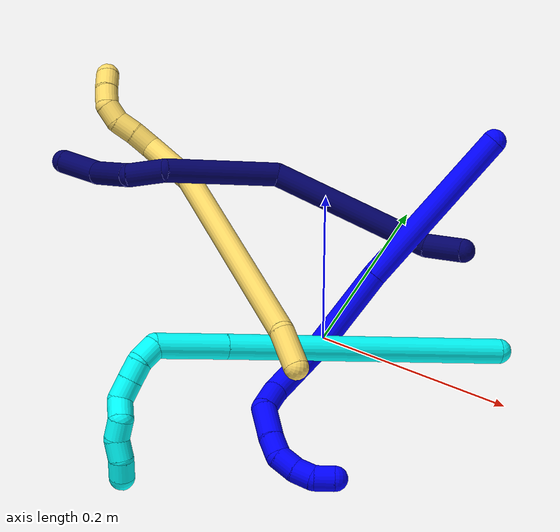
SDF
<sdf version="1.7">
 <world name="default">
  <model name="bin">
   <static>1</static>
   <link name="bottom">
    <collision name="collision-bottom">
     <pose>0 0 -0.01 0 -0 0</pose>
     <geometry><box><size>0.8 0.6 0.02</size></box></geometry>
     <surface>
      <friction><ode><mu>100</mu><mu2>100</mu2></ode></friction>
      <contact><collide_bitmask>65535</collide_bitmask></contact>
     </surface>
    </collision>
   </link>
   <link name="west_wall">
    <collision name="collision-west_wall">
     <pose>-0.41 0 0.1 0 -0 0</pose>
     <geometry><box><size>0.02 0.6 0.2</size></box></geometry>
     <surface>
      <friction><ode><mu>100</mu><mu2>100</mu2></ode></friction>
      <contact><collide_bitmask>65535</collide_bitmask></contact>
     </surface>
    </collision>
   </link>
   <link name="east_wall">
    <collision name="collision-east_wall">
     <pose>0.41 0 0.1 0 -0 0</pose>
     <geometry><box><size>0.02 0.6 0.2</size></box></geometry>
     <surface>
      <friction><ode><mu>100</mu><mu2>100</mu2></ode></friction>
      <contact><collide_bitmask>65535</collide_bitmask></contact>
     </surface>
    </collision>
   </link>
   <link name="south_wall">
    <collision name="collision-south_wall">
     <pose>0 -0.31 0.1 0 -0 0</pose>
     <geometry><box><size>0.8 0.02 0.2</size></box></geometry>
     <surface>
      <friction><ode><mu>100</mu><mu2>100</mu2></ode></friction>
      <contact><collide_bitmask>65535</collide_bitmask></contact>
     </surface>
    </collision>
   </link>
   <link name="north_wall">
    <collision name="collision-north_wall">
     <pose>0 0.31 0.1 0 -0 0</pose>
     <geometry><box><size>0.8 0.02 0.2</size></box></geometry>
     <surface>
      <friction><ode><mu>100</mu><mu2>100</mu2></ode></friction>
      <contact><collide_bitmask>65535</collide_bitmask></contact>
     </surface>
    </collision>
   </link>
  </model>
  <model name="1">
   <static>0</static>
   <link name="1">
    <collision name="collision-cylinder-e_1_1_4">
     <pose>-0.057769 -0.057531 0.038666 0.979057 -0.694777 -0.38113</pose>
     <geometry><cylinder><radius>0.0125</radius><length>0.180468</length></cylinder></geometry>
     <surface>
      <friction><ode><mu>1.16</mu><mu2>1.16</mu2><slip1>0</slip1><slip2>0</slip2></ode></friction>
      <contact><ode><kp>1e+06</kp><kd>1</kd><max_vel>0</max_vel><min_depth>0.001</min_depth></ode></contact>
     </surface>
    </collision>
    <visual name="visual-cylinder-e_1_1_4">
     <pose>-0.057769 -0.057531 0.038666 0.979057 -0.694777 -0.38113</pose>
     <geometry><cylinder><radius>0.0125</radius><length>0.180468</length></cylinder></geometry>
     <material><ambient>0 0 1 1</ambient></material>
    </visual>
    <collision name="collision-cylinder-e_2_4_5">
     <pose>-0.14326 -0.145166 0.093952 1.06631 -0.678493 -0.410656</pose>
     <geometry><cylinder><radius>0.0125</radius><length>0.088339</length></cylinder></geometry>
     <surface>
      <friction><ode><mu>1.16</mu><mu2>1.16</mu2><slip1>0</slip1><slip2>0</slip2></ode></friction>
      <contact><ode><kp>1e+06</kp><kd>1</kd><max_vel>0</max_vel><min_depth>0.001</min_depth></ode></contact>
     </surface>
    </collision>
    <visual name="visual-cylinder-e_2_4_5">
     <pose>-0.14326 -0.145166 0.093952 1.06631 -0.678493 -0.410656</pose>
     <geometry><cylinder><radius>0.0125</radius><length>0.088339</length></cylinder></geometry>
     <material><ambient>0 0 1 1</ambient></material>
    </visual>
    <collision name="collision-cylinder-e_3_5_6">
     <pose>-0.172323 -0.202817 0.141374 0.729722 -0.032449 -0.012395</pose>
     <geometry><cylinder><radius>0.0125</radius><length>0.08269</length></cylinder></geometry>
     <surface>
      <friction><ode><mu>1.16</mu><mu2>1.16</mu2><slip1>0</slip1><slip2>0</slip2></ode></friction>
      <contact><ode><kp>1e+06</kp><kd>1</kd><max_vel>0</max_vel><min_depth>0.001</min_depth></ode></contact>
     </surface>
    </collision>
    <visual name="visual-cylinder-e_3_5_6">
     <pose>-0.172323 -0.202817 0.141374 0.729722 -0.032449 -0.012395</pose>
     <geometry><cylinder><radius>0.0125</radius><length>0.08269</length></cylinder></geometry>
     <material><ambient>0 0 1 1</ambient></material>
    </visual>
    <collision name="collision-cylinder-e_4_6_7">
     <pose>-0.170884 -0.240504 0.182005 0.800805 0.194392 0.082493</pose>
     <geometry><cylinder><radius>0.0125</radius><length>0.028787</length></cylinder></geometry>
     <surface>
      <friction><ode><mu>1.16</mu><mu2>1.16</mu2><slip1>0</slip1><slip2>0</slip2></ode></friction>
      <contact><ode><kp>1e+06</kp><kd>1</kd><max_vel>0</max_vel><min_depth>0.001</min_depth></ode></contact>
     </surface>
    </collision>
    <visual name="visual-cylinder-e_4_6_7">
     <pose>-0.170884 -0.240504 0.182005 0.800805 0.194392 0.082493</pose>
     <geometry><cylinder><radius>0.0125</radius><length>0.028787</length></cylinder></geometry>
     <material><ambient>0 0 1 1</ambient></material>
    </visual>
    <collision name="collision-cylinder-e_5_7_8">
     <pose>-0.161872 -0.267507 0.193747 1.45795 0.351904 0.314933</pose>
     <geometry><cylinder><radius>0.0125</radius><length>0.036159</length></cylinder></geometry>
     <surface>
      <friction><ode><mu>1.16</mu><mu2>1.16</mu2><slip1>0</slip1><slip2>0</slip2></ode></friction>
      <contact><ode><kp>1e+06</kp><kd>1</kd><max_vel>0</max_vel><min_depth>0.001</min_depth></ode></contact>
     </surface>
    </collision>
    <visual name="visual-cylinder-e_5_7_8">
     <pose>-0.161872 -0.267507 0.193747 1.45795 0.351904 0.314933</pose>
     <geometry><cylinder><radius>0.0125</radius><length>0.036159</length></cylinder></geometry>
     <material><ambient>0 0 1 1</ambient></material>
    </visual>
    <collision name="collision-cylinder-e_6_8_9">
     <pose>-0.151729 -0.294349 0.195339 1.60273 0.373334 0.385159</pose>
     <geometry><cylinder><radius>0.0125</radius><length>0.021444</length></cylinder></geometry>
     <surface>
      <friction><ode><mu>1.16</mu><mu2>1.16</mu2><slip1>0</slip1><slip2>0</slip2></ode></friction>
      <contact><ode><kp>1e+06</kp><kd>1</kd><max_vel>0</max_vel><min_depth>0.001</min_depth></ode></contact>
     </surface>
    </collision>
    <visual name="visual-cylinder-e_6_8_9">
     <pose>-0.151729 -0.294349 0.195339 1.60273 0.373334 0.385159</pose>
     <geometry><cylinder><radius>0.0125</radius><length>0.021444</length></cylinder></geometry>
     <material><ambient>0 0 1 1</ambient></material>
    </visual>
    <collision name="collision-cylinder-e_7_9_10">
     <pose>-0.142425 -0.312033 0.189659 2.17862 0.521503 0.944298</pose>
     <geometry><cylinder><radius>0.0125</radius><length>0.021654</length></cylinder></geometry>
     <surface>
      <friction><ode><mu>1.16</mu><mu2>1.16</mu2><slip1>0</slip1><slip2>0</slip2></ode></friction>
      <contact><ode><kp>1e+06</kp><kd>1</kd><max_vel>0</max_vel><min_depth>0.001</min_depth></ode></contact>
     </surface>
    </collision>
    <visual name="visual-cylinder-e_7_9_10">
     <pose>-0.142425 -0.312033 0.189659 2.17862 0.521503 0.944298</pose>
     <geometry><cylinder><radius>0.0125</radius><length>0.021654</length></cylinder></geometry>
     <material><ambient>0 0 1 1</ambient></material>
    </visual>
    <collision name="collision-cylinder-e_8_10_11">
     <pose>-0.13016 -0.325022 0.179177 2.34068 0.751231 1.49991</pose>
     <geometry><cylinder><radius>0.0125</radius><length>0.020134</length></cylinder></geometry>
     <surface>
      <friction><ode><mu>1.16</mu><mu2>1.16</mu2><slip1>0</slip1><slip2>0</slip2></ode></friction>
      <contact><ode><kp>1e+06</kp><kd>1</kd><max_vel>0</max_vel><min_depth>0.001</min_depth></ode></contact>
     </surface>
    </collision>
    <visual name="visual-cylinder-e_8_10_11">
     <pose>-0.13016 -0.325022 0.179177 2.34068 0.751231 1.49991</pose>
     <geometry><cylinder><radius>0.0125</radius><length>0.020134</length></cylinder></geometry>
     <material><ambient>0 0 1 1</ambient></material>
    </visual>
    <collision name="collision-cylinder-e_9_11_2">
     <pose>-0.117065 -0.331511 0.166112 2.99093 0.659067 2.7072</pose>
     <geometry><cylinder><radius>0.0125</radius><length>0.020326</length></cylinder></geometry>
     <surface>
      <friction><ode><mu>1.16</mu><mu2>1.16</mu2><slip1>0</slip1><slip2>0</slip2></ode></friction>
      <contact><ode><kp>1e+06</kp><kd>1</kd><max_vel>0</max_vel><min_depth>0.001</min_depth></ode></contact>
     </surface>
    </collision>
    <visual name="visual-cylinder-e_9_11_2">
     <pose>-0.117065 -0.331511 0.166112 2.99093 0.659067 2.7072</pose>
     <geometry><cylinder><radius>0.0125</radius><length>0.020326</length></cylinder></geometry>
     <material><ambient>0 0 1 1</ambient></material>
    </visual>
    <collision name="collision-sphere-2">
     <pose>-0.110841 -0.332717 0.158169 0 -0 0</pose>
     <geometry><sphere><radius>0.0125</radius></sphere></geometry>
     <surface>
      <friction><ode><mu>1.16</mu><mu2>1.16</mu2><slip1>0</slip1><slip2>0</slip2></ode></friction>
      <contact><ode><kp>1e+06</kp><kd>1</kd><max_vel>0</max_vel><min_depth>0.001</min_depth></ode></contact>
     </surface>
    </collision>
    <visual name="visual-sphere-2">
     <pose>-0.110841 -0.332717 0.158169 0 -0 0</pose>
     <geometry><sphere><radius>0.0125</radius></sphere></geometry>
     <material><ambient>0 0 1 1</ambient></material>
    </visual>
    <collision name="collision-sphere-11">
     <pose>-0.123289 -0.330305 0.174056 0 -0 0</pose>
     <geometry><sphere><radius>0.0125</radius></sphere></geometry>
     <surface>
      <friction><ode><mu>1.16</mu><mu2>1.16</mu2><slip1>0</slip1><slip2>0</slip2></ode></friction>
      <contact><ode><kp>1e+06</kp><kd>1</kd><max_vel>0</max_vel><min_depth>0.001</min_depth></ode></contact>
     </surface>
    </collision>
    <visual name="visual-sphere-11">
     <pose>-0.123289 -0.330305 0.174056 0 -0 0</pose>
     <geometry><sphere><radius>0.0125</radius></sphere></geometry>
     <material><ambient>0 0 1 1</ambient></material>
    </visual>
    <collision name="collision-sphere-10">
     <pose>-0.137031 -0.31974 0.184298 0 -0 0</pose>
     <geometry><sphere><radius>0.0125</radius></sphere></geometry>
     <surface>
      <friction><ode><mu>1.16</mu><mu2>1.16</mu2><slip1>0</slip1><slip2>0</slip2></ode></friction>
      <contact><ode><kp>1e+06</kp><kd>1</kd><max_vel>0</max_vel><min_depth>0.001</min_depth></ode></contact>
     </surface>
    </collision>
    <visual name="visual-sphere-10">
     <pose>-0.137031 -0.31974 0.184298 0 -0 0</pose>
     <geometry><sphere><radius>0.0125</radius></sphere></geometry>
     <material><ambient>0 0 1 1</ambient></material>
    </visual>
    <collision name="collision-sphere-9">
     <pose>-0.147819 -0.304327 0.19502 0 -0 0</pose>
     <geometry><sphere><radius>0.0125</radius></sphere></geometry>
     <surface>
      <friction><ode><mu>1.16</mu><mu2>1.16</mu2><slip1>0</slip1><slip2>0</slip2></ode></friction>
      <contact><ode><kp>1e+06</kp><kd>1</kd><max_vel>0</max_vel><min_depth>0.001</min_depth></ode></contact>
     </surface>
    </collision>
    <visual name="visual-sphere-9">
     <pose>-0.147819 -0.304327 0.19502 0 -0 0</pose>
     <geometry><sphere><radius>0.0125</radius></sphere></geometry>
     <material><ambient>0 0 1 1</ambient></material>
    </visual>
    <collision name="collision-sphere-4">
     <pose>-0.115538 -0.115063 0.077331 0 -0 0</pose>
     <geometry><sphere><radius>0.0125</radius></sphere></geometry>
     <surface>
      <friction><ode><mu>1.16</mu><mu2>1.16</mu2><slip1>0</slip1><slip2>0</slip2></ode></friction>
      <contact><ode><kp>1e+06</kp><kd>1</kd><max_vel>0</max_vel><min_depth>0.001</min_depth></ode></contact>
     </surface>
    </collision>
    <visual name="visual-sphere-4">
     <pose>-0.115538 -0.115063 0.077331 0 -0 0</pose>
     <geometry><sphere><radius>0.0125</radius></sphere></geometry>
     <material><ambient>0 0 1 1</ambient></material>
    </visual>
    <collision name="collision-sphere-1">
     <geometry><sphere><radius>0.0125</radius></sphere></geometry>
     <surface>
      <friction><ode><mu>1.16</mu><mu2>1.16</mu2><slip1>0</slip1><slip2>0</slip2></ode></friction>
      <contact><ode><kp>1e+06</kp><kd>1</kd><max_vel>0</max_vel><min_depth>0.001</min_depth></ode></contact>
     </surface>
    </collision>
    <visual name="visual-sphere-1">
     <geometry><sphere><radius>0.0125</radius></sphere></geometry>
     <material><ambient>0 0 1 1</ambient></material>
    </visual>
    <collision name="collision-sphere-8">
     <pose>-0.15564 -0.28437 0.195658 0 -0 0</pose>
     <geometry><sphere><radius>0.0125</radius></sphere></geometry>
     <surface>
      <friction><ode><mu>1.16</mu><mu2>1.16</mu2><slip1>0</slip1><slip2>0</slip2></ode></friction>
      <contact><ode><kp>1e+06</kp><kd>1</kd><max_vel>0</max_vel><min_depth>0.001</min_depth></ode></contact>
     </surface>
    </collision>
    <visual name="visual-sphere-8">
     <pose>-0.15564 -0.28437 0.195658 0 -0 0</pose>
     <geometry><sphere><radius>0.0125</radius></sphere></geometry>
     <material><ambient>0 0 1 1</ambient></material>
    </visual>
    <collision name="collision-sphere-5">
     <pose>-0.170981 -0.175269 0.110573 0 -0 0</pose>
     <geometry><sphere><radius>0.0125</radius></sphere></geometry>
     <surface>
      <friction><ode><mu>1.16</mu><mu2>1.16</mu2><slip1>0</slip1><slip2>0</slip2></ode></friction>
      <contact><ode><kp>1e+06</kp><kd>1</kd><max_vel>0</max_vel><min_depth>0.001</min_depth></ode></contact>
     </surface>
    </collision>
    <visual name="visual-sphere-5">
     <pose>-0.170981 -0.175269 0.110573 0 -0 0</pose>
     <geometry><sphere><radius>0.0125</radius></sphere></geometry>
     <material><ambient>0 0 1 1</ambient></material>
    </visual>
    <collision name="collision-sphere-6">
     <pose>-0.173664 -0.230366 0.172174 0 -0 0</pose>
     <geometry><sphere><radius>0.0125</radius></sphere></geometry>
     <surface>
      <friction><ode><mu>1.16</mu><mu2>1.16</mu2><slip1>0</slip1><slip2>0</slip2></ode></friction>
      <contact><ode><kp>1e+06</kp><kd>1</kd><max_vel>0</max_vel><min_depth>0.001</min_depth></ode></contact>
     </surface>
    </collision>
    <visual name="visual-sphere-6">
     <pose>-0.173664 -0.230366 0.172174 0 -0 0</pose>
     <geometry><sphere><radius>0.0125</radius></sphere></geometry>
     <material><ambient>0 0 1 1</ambient></material>
    </visual>
    <collision name="collision-sphere-7">
     <pose>-0.168103 -0.250643 0.191836 0 -0 0</pose>
     <geometry><sphere><radius>0.0125</radius></sphere></geometry>
     <surface>
      <friction><ode><mu>1.16</mu><mu2>1.16</mu2><slip1>0</slip1><slip2>0</slip2></ode></friction>
      <contact><ode><kp>1e+06</kp><kd>1</kd><max_vel>0</max_vel><min_depth>0.001</min_depth></ode></contact>
     </surface>
    </collision>
    <visual name="visual-sphere-7">
     <pose>-0.168103 -0.250643 0.191836 0 -0 0</pose>
     <geometry><sphere><radius>0.0125</radius></sphere></geometry>
     <material><ambient>0 0 1 1</ambient></material>
    </visual>
    <inertial>
     <pose>-0.118881 -0.165849 0.108985 0 -0 0</pose>
     <mass>0.5</mass>
     <inertia>
      <ixx>0.000292</ixx>
      <ixy>0</ixy>
      <ixz>0</ixz>
      <iyy>0.000257</iyy>
      <iyz>0</iyz>
      <izz>0.000767</izz>
     </inertia>
    </inertial>
   </link>
   <pose>0.096102 0.18786 0.157817 0.700076 -0.84079 0.014158</pose>
  </model>
  <model name="3">
   <static>0</static>
   <link name="3">
    <collision name="collision-cylinder-e_1_1_4">
     <pose>-0.042125 -0.047841 0.127437 0.359126 -0.300119 -0.054876</pose>
     <geometry><cylinder><radius>0.0125</radius><length>0.284981</length></cylinder></geometry>
     <surface>
      <friction><ode><mu>1.16</mu><mu2>1.16</mu2><slip1>0</slip1><slip2>0</slip2></ode></friction>
      <contact><ode><kp>1e+06</kp><kd>1</kd><max_vel>0</max_vel><min_depth>0.001</min_depth></ode></contact>
     </surface>
    </collision>
    <visual name="visual-cylinder-e_1_1_4">
     <pose>-0.042125 -0.047841 0.127437 0.359126 -0.300119 -0.054876</pose>
     <geometry><cylinder><radius>0.0125</radius><length>0.284981</length></cylinder></geometry>
     <material><ambient>0.003922 1 0.996078 1</ambient></material>
    </visual>
    <collision name="collision-cylinder-e_2_4_5">
     <pose>-0.09476 -0.107532 0.286902 0.354392 -0.298581 -0.053856</pose>
     <geometry><cylinder><radius>0.0125</radius><length>0.071461</length></cylinder></geometry>
     <surface>
      <friction><ode><mu>1.16</mu><mu2>1.16</mu2><slip1>0</slip1><slip2>0</slip2></ode></friction>
      <contact><ode><kp>1e+06</kp><kd>1</kd><max_vel>0</max_vel><min_depth>0.001</min_depth></ode></contact>
     </surface>
    </collision>
    <visual name="visual-cylinder-e_2_4_5">
     <pose>-0.09476 -0.107532 0.286902 0.354392 -0.298581 -0.053856</pose>
     <geometry><cylinder><radius>0.0125</radius><length>0.071461</length></cylinder></geometry>
     <material><ambient>0.003922 1 0.996078 1</ambient></material>
    </visual>
    <collision name="collision-cylinder-e_3_5_6">
     <pose>-0.104336 -0.115747 0.329361 -0.3353 0.084405 -0.014293</pose>
     <geometry><cylinder><radius>0.0125</radius><length>0.022173</length></cylinder></geometry>
     <surface>
      <friction><ode><mu>1.16</mu><mu2>1.16</mu2><slip1>0</slip1><slip2>0</slip2></ode></friction>
      <contact><ode><kp>1e+06</kp><kd>1</kd><max_vel>0</max_vel><min_depth>0.001</min_depth></ode></contact>
     </surface>
    </collision>
    <visual name="visual-cylinder-e_3_5_6">
     <pose>-0.104336 -0.115747 0.329361 -0.3353 0.084405 -0.014293</pose>
     <geometry><cylinder><radius>0.0125</radius><length>0.022173</length></cylinder></geometry>
     <material><ambient>0.003922 1 0.996078 1</ambient></material>
    </visual>
    <collision name="collision-cylinder-e_4_6_7">
     <pose>-0.098685 -0.10818 0.347731 -0.459896 0.489286 -0.116744</pose>
     <geometry><cylinder><radius>0.0125</radius><length>0.020073</length></cylinder></geometry>
     <surface>
      <friction><ode><mu>1.16</mu><mu2>1.16</mu2><slip1>0</slip1><slip2>0</slip2></ode></friction>
      <contact><ode><kp>1e+06</kp><kd>1</kd><max_vel>0</max_vel><min_depth>0.001</min_depth></ode></contact>
     </surface>
    </collision>
    <visual name="visual-cylinder-e_4_6_7">
     <pose>-0.098685 -0.10818 0.347731 -0.459896 0.489286 -0.116744</pose>
     <geometry><cylinder><radius>0.0125</radius><length>0.020073</length></cylinder></geometry>
     <material><ambient>0.003922 1 0.996078 1</ambient></material>
    </visual>
    <collision name="collision-cylinder-e_5_7_8">
     <pose>-0.089188 -0.09972 0.363981 -0.498835 0.467659 -0.121194</pose>
     <geometry><cylinder><radius>0.0125</radius><length>0.021206</length></cylinder></geometry>
     <surface>
      <friction><ode><mu>1.16</mu><mu2>1.16</mu2><slip1>0</slip1><slip2>0</slip2></ode></friction>
      <contact><ode><kp>1e+06</kp><kd>1</kd><max_vel>0</max_vel><min_depth>0.001</min_depth></ode></contact>
     </surface>
    </collision>
    <visual name="visual-cylinder-e_5_7_8">
     <pose>-0.089188 -0.09972 0.363981 -0.498835 0.467659 -0.121194</pose>
     <geometry><cylinder><radius>0.0125</radius><length>0.021206</length></cylinder></geometry>
     <material><ambient>0.003922 1 0.996078 1</ambient></material>
    </visual>
    <collision name="collision-cylinder-e_6_8_9">
     <pose>-0.082584 -0.086379 0.376704 -1.10667 0.182931 -0.113192</pose>
     <geometry><cylinder><radius>0.0125</radius><length>0.020047</length></cylinder></geometry>
     <surface>
      <friction><ode><mu>1.16</mu><mu2>1.16</mu2><slip1>0</slip1><slip2>0</slip2></ode></friction>
      <contact><ode><kp>1e+06</kp><kd>1</kd><max_vel>0</max_vel><min_depth>0.001</min_depth></ode></contact>
     </surface>
    </collision>
    <visual name="visual-cylinder-e_6_8_9">
     <pose>-0.082584 -0.086379 0.376704 -1.10667 0.182931 -0.113192</pose>
     <geometry><cylinder><radius>0.0125</radius><length>0.020047</length></cylinder></geometry>
     <material><ambient>0.003922 1 0.996078 1</ambient></material>
    </visual>
    <collision name="collision-cylinder-e_7_9_10">
     <pose>-0.07327 -0.073566 0.386408 -0.647182 0.8461 -0.299735</pose>
     <geometry><cylinder><radius>0.0125</radius><length>0.020011</length></cylinder></geometry>
     <surface>
      <friction><ode><mu>1.16</mu><mu2>1.16</mu2><slip1>0</slip1><slip2>0</slip2></ode></friction>
      <contact><ode><kp>1e+06</kp><kd>1</kd><max_vel>0</max_vel><min_depth>0.001</min_depth></ode></contact>
     </surface>
    </collision>
    <visual name="visual-cylinder-e_7_9_10">
     <pose>-0.07327 -0.073566 0.386408 -0.647182 0.8461 -0.299735</pose>
     <geometry><cylinder><radius>0.0125</radius><length>0.020011</length></cylinder></geometry>
     <material><ambient>0.003922 1 0.996078 1</ambient></material>
    </visual>
    <collision name="collision-cylinder-e_8_10_11">
     <pose>-0.058469 -0.062979 0.393566 -1.29477 0.818037 -0.633411</pose>
     <geometry><cylinder><radius>0.0125</radius><length>0.020031</length></cylinder></geometry>
     <surface>
      <friction><ode><mu>1.16</mu><mu2>1.16</mu2><slip1>0</slip1><slip2>0</slip2></ode></friction>
      <contact><ode><kp>1e+06</kp><kd>1</kd><max_vel>0</max_vel><min_depth>0.001</min_depth></ode></contact>
     </surface>
    </collision>
    <visual name="visual-cylinder-e_8_10_11">
     <pose>-0.058469 -0.062979 0.393566 -1.29477 0.818037 -0.633411</pose>
     <geometry><cylinder><radius>0.0125</radius><length>0.020031</length></cylinder></geometry>
     <material><ambient>0.003922 1 0.996078 1</ambient></material>
    </visual>
    <collision name="collision-cylinder-e_9_11_2">
     <pose>-0.042281 -0.05253 0.397969 -0.98932 1.09101 -0.632754</pose>
     <geometry><cylinder><radius>0.0125</radius><length>0.020017</length></cylinder></geometry>
     <surface>
      <friction><ode><mu>1.16</mu><mu2>1.16</mu2><slip1>0</slip1><slip2>0</slip2></ode></friction>
      <contact><ode><kp>1e+06</kp><kd>1</kd><max_vel>0</max_vel><min_depth>0.001</min_depth></ode></contact>
     </surface>
    </collision>
    <visual name="visual-cylinder-e_9_11_2">
     <pose>-0.042281 -0.05253 0.397969 -0.98932 1.09101 -0.632754</pose>
     <geometry><cylinder><radius>0.0125</radius><length>0.020017</length></cylinder></geometry>
     <material><ambient>0.003922 1 0.996078 1</ambient></material>
    </visual>
    <collision name="collision-sphere-2">
     <pose>-0.033403 -0.04867 0.400507 0 -0 0</pose>
     <geometry><sphere><radius>0.0125</radius></sphere></geometry>
     <surface>
      <friction><ode><mu>1.16</mu><mu2>1.16</mu2><slip1>0</slip1><slip2>0</slip2></ode></friction>
      <contact><ode><kp>1e+06</kp><kd>1</kd><max_vel>0</max_vel><min_depth>0.001</min_depth></ode></contact>
     </surface>
    </collision>
    <visual name="visual-sphere-2">
     <pose>-0.033403 -0.04867 0.400507 0 -0 0</pose>
     <geometry><sphere><radius>0.0125</radius></sphere></geometry>
     <material><ambient>0.003922 1 0.996078 1</ambient></material>
    </visual>
    <collision name="collision-sphere-11">
     <pose>-0.05116 -0.056391 0.395432 0 -0 0</pose>
     <geometry><sphere><radius>0.0125</radius></sphere></geometry>
     <surface>
      <friction><ode><mu>1.16</mu><mu2>1.16</mu2><slip1>0</slip1><slip2>0</slip2></ode></friction>
      <contact><ode><kp>1e+06</kp><kd>1</kd><max_vel>0</max_vel><min_depth>0.001</min_depth></ode></contact>
     </surface>
    </collision>
    <visual name="visual-sphere-11">
     <pose>-0.05116 -0.056391 0.395432 0 -0 0</pose>
     <geometry><sphere><radius>0.0125</radius></sphere></geometry>
     <material><ambient>0.003922 1 0.996078 1</ambient></material>
    </visual>
    <collision name="collision-sphere-10">
     <pose>-0.065779 -0.069567 0.3917 0 -0 0</pose>
     <geometry><sphere><radius>0.0125</radius></sphere></geometry>
     <surface>
      <friction><ode><mu>1.16</mu><mu2>1.16</mu2><slip1>0</slip1><slip2>0</slip2></ode></friction>
      <contact><ode><kp>1e+06</kp><kd>1</kd><max_vel>0</max_vel><min_depth>0.001</min_depth></ode></contact>
     </surface>
    </collision>
    <visual name="visual-sphere-10">
     <pose>-0.065779 -0.069567 0.3917 0 -0 0</pose>
     <geometry><sphere><radius>0.0125</radius></sphere></geometry>
     <material><ambient>0.003922 1 0.996078 1</ambient></material>
    </visual>
    <collision name="collision-sphere-9">
     <pose>-0.080761 -0.077565 0.381116 0 -0 0</pose>
     <geometry><sphere><radius>0.0125</radius></sphere></geometry>
     <surface>
      <friction><ode><mu>1.16</mu><mu2>1.16</mu2><slip1>0</slip1><slip2>0</slip2></ode></friction>
      <contact><ode><kp>1e+06</kp><kd>1</kd><max_vel>0</max_vel><min_depth>0.001</min_depth></ode></contact>
     </surface>
    </collision>
    <visual name="visual-sphere-9">
     <pose>-0.080761 -0.077565 0.381116 0 -0 0</pose>
     <geometry><sphere><radius>0.0125</radius></sphere></geometry>
     <material><ambient>0.003922 1 0.996078 1</ambient></material>
    </visual>
    <collision name="collision-sphere-4">
     <pose>-0.08425 -0.095681 0.254875 0 -0 0</pose>
     <geometry><sphere><radius>0.0125</radius></sphere></geometry>
     <surface>
      <friction><ode><mu>1.16</mu><mu2>1.16</mu2><slip1>0</slip1><slip2>0</slip2></ode></friction>
      <contact><ode><kp>1e+06</kp><kd>1</kd><max_vel>0</max_vel><min_depth>0.001</min_depth></ode></contact>
     </surface>
    </collision>
    <visual name="visual-sphere-4">
     <pose>-0.08425 -0.095681 0.254875 0 -0 0</pose>
     <geometry><sphere><radius>0.0125</radius></sphere></geometry>
     <material><ambient>0.003922 1 0.996078 1</ambient></material>
    </visual>
    <collision name="collision-sphere-1">
     <geometry><sphere><radius>0.0125</radius></sphere></geometry>
     <surface>
      <friction><ode><mu>1.16</mu><mu2>1.16</mu2><slip1>0</slip1><slip2>0</slip2></ode></friction>
      <contact><ode><kp>1e+06</kp><kd>1</kd><max_vel>0</max_vel><min_depth>0.001</min_depth></ode></contact>
     </surface>
    </collision>
    <visual name="visual-sphere-1">
     <geometry><sphere><radius>0.0125</radius></sphere></geometry>
     <material><ambient>0.003922 1 0.996078 1</ambient></material>
    </visual>
    <collision name="collision-sphere-8">
     <pose>-0.084408 -0.095192 0.372292 0 -0 0</pose>
     <geometry><sphere><radius>0.0125</radius></sphere></geometry>
     <surface>
      <friction><ode><mu>1.16</mu><mu2>1.16</mu2><slip1>0</slip1><slip2>0</slip2></ode></friction>
      <contact><ode><kp>1e+06</kp><kd>1</kd><max_vel>0</max_vel><min_depth>0.001</min_depth></ode></contact>
     </surface>
    </collision>
    <visual name="visual-sphere-8">
     <pose>-0.084408 -0.095192 0.372292 0 -0 0</pose>
     <geometry><sphere><radius>0.0125</radius></sphere></geometry>
     <material><ambient>0.003922 1 0.996078 1</ambient></material>
    </visual>
    <collision name="collision-sphere-5">
     <pose>-0.105271 -0.119382 0.318929 0 -0 0</pose>
     <geometry><sphere><radius>0.0125</radius></sphere></geometry>
     <surface>
      <friction><ode><mu>1.16</mu><mu2>1.16</mu2><slip1>0</slip1><slip2>0</slip2></ode></friction>
      <contact><ode><kp>1e+06</kp><kd>1</kd><max_vel>0</max_vel><min_depth>0.001</min_depth></ode></contact>
     </surface>
    </collision>
    <visual name="visual-sphere-5">
     <pose>-0.105271 -0.119382 0.318929 0 -0 0</pose>
     <geometry><sphere><radius>0.0125</radius></sphere></geometry>
     <material><ambient>0.003922 1 0.996078 1</ambient></material>
    </visual>
    <collision name="collision-sphere-6">
     <pose>-0.103402 -0.112112 0.339793 0 -0 0</pose>
     <geometry><sphere><radius>0.0125</radius></sphere></geometry>
     <surface>
      <friction><ode><mu>1.16</mu><mu2>1.16</mu2><slip1>0</slip1><slip2>0</slip2></ode></friction>
      <contact><ode><kp>1e+06</kp><kd>1</kd><max_vel>0</max_vel><min_depth>0.001</min_depth></ode></contact>
     </surface>
    </collision>
    <visual name="visual-sphere-6">
     <pose>-0.103402 -0.112112 0.339793 0 -0 0</pose>
     <geometry><sphere><radius>0.0125</radius></sphere></geometry>
     <material><ambient>0.003922 1 0.996078 1</ambient></material>
    </visual>
    <collision name="collision-sphere-7">
     <pose>-0.093967 -0.104248 0.35567 0 -0 0</pose>
     <geometry><sphere><radius>0.0125</radius></sphere></geometry>
     <surface>
      <friction><ode><mu>1.16</mu><mu2>1.16</mu2><slip1>0</slip1><slip2>0</slip2></ode></friction>
      <contact><ode><kp>1e+06</kp><kd>1</kd><max_vel>0</max_vel><min_depth>0.001</min_depth></ode></contact>
     </surface>
    </collision>
    <visual name="visual-sphere-7">
     <pose>-0.093967 -0.104248 0.35567 0 -0 0</pose>
     <geometry><sphere><radius>0.0125</radius></sphere></geometry>
     <material><ambient>0.003922 1 0.996078 1</ambient></material>
    </visual>
    <inertial>
     <pose>-0.060203 -0.067375 0.21991 0 -0 0</pose>
     <mass>0.5</mass>
     <inertia>
      <ixx>0.001782</ixx>
      <ixy>0</ixy>
      <ixz>0</ixz>
      <iyy>0.001755</iyy>
      <iyz>0</iyz>
      <izz>0.001266</izz>
     </inertia>
    </inertial>
   </link>
   <pose>0.169874 0.05431 0.012186 -2.46184 1.45348 1.68573</pose>
  </model>
  <model name="5">
   <static>0</static>
   <link name="5">
    <collision name="collision-cylinder-e_1_1_4">
     <pose>-0.016897 0.010982 -0.00319 -1.85348 -0.9758 1.23052</pose>
     <geometry><cylinder><radius>0.0125</radius><length>0.040806</length></cylinder></geometry>
     <surface>
      <friction><ode><mu>1.16</mu><mu2>1.16</mu2><slip1>0</slip1><slip2>0</slip2></ode></friction>
      <contact><ode><kp>1e+06</kp><kd>1</kd><max_vel>0</max_vel><min_depth>0.001</min_depth></ode></contact>
     </surface>
    </collision>
    <visual name="visual-cylinder-e_1_1_4">
     <pose>-0.016897 0.010982 -0.00319 -1.85348 -0.9758 1.23052</pose>
     <geometry><cylinder><radius>0.0125</radius><length>0.040806</length></cylinder></geometry>
     <material><ambient>1 0.858824 0.4 1</ambient></material>
    </visual>
    <collision name="collision-cylinder-e_2_4_5">
     <pose>-0.115514 0.138221 0.001767 -1.50083 -0.611539 0.572478</pose>
     <geometry><cylinder><radius>0.0125</radius><length>0.284677</length></cylinder></geometry>
     <surface>
      <friction><ode><mu>1.16</mu><mu2>1.16</mu2><slip1>0</slip1><slip2>0</slip2></ode></friction>
      <contact><ode><kp>1e+06</kp><kd>1</kd><max_vel>0</max_vel><min_depth>0.001</min_depth></ode></contact>
     </surface>
    </collision>
    <visual name="visual-cylinder-e_2_4_5">
     <pose>-0.115514 0.138221 0.001767 -1.50083 -0.611539 0.572478</pose>
     <geometry><cylinder><radius>0.0125</radius><length>0.284677</length></cylinder></geometry>
     <material><ambient>1 0.858824 0.4 1</ambient></material>
    </visual>
    <collision name="collision-cylinder-e_3_5_6">
     <pose>-0.214773 0.281583 0.000223 -1.9142 -0.547211 0.758244</pose>
     <geometry><cylinder><radius>0.0125</radius><length>0.067417</length></cylinder></geometry>
     <surface>
      <friction><ode><mu>1.16</mu><mu2>1.16</mu2><slip1>0</slip1><slip2>0</slip2></ode></friction>
      <contact><ode><kp>1e+06</kp><kd>1</kd><max_vel>0</max_vel><min_depth>0.001</min_depth></ode></contact>
     </surface>
    </collision>
    <visual name="visual-cylinder-e_3_5_6">
     <pose>-0.214773 0.281583 0.000223 -1.9142 -0.547211 0.758244</pose>
     <geometry><cylinder><radius>0.0125</radius><length>0.067417</length></cylinder></geometry>
     <material><ambient>1 0.858824 0.4 1</ambient></material>
    </visual>
    <collision name="collision-cylinder-e_4_6_7">
     <pose>-0.238796 0.313171 -0.018437 -2.67807 -0.574138 1.79284</pose>
     <geometry><cylinder><radius>0.0125</radius><length>0.02388</length></cylinder></geometry>
     <surface>
      <friction><ode><mu>1.16</mu><mu2>1.16</mu2><slip1>0</slip1><slip2>0</slip2></ode></friction>
      <contact><ode><kp>1e+06</kp><kd>1</kd><max_vel>0</max_vel><min_depth>0.001</min_depth></ode></contact>
     </surface>
    </collision>
    <visual name="visual-cylinder-e_4_6_7">
     <pose>-0.238796 0.313171 -0.018437 -2.67807 -0.574138 1.79284</pose>
     <geometry><cylinder><radius>0.0125</radius><length>0.02388</length></cylinder></geometry>
     <material><ambient>1 0.858824 0.4 1</ambient></material>
    </visual>
    <collision name="collision-cylinder-e_5_7_8">
     <pose>-0.250471 0.322688 -0.035731 -2.59773 -0.489989 1.46191</pose>
     <geometry><cylinder><radius>0.0125</radius><length>0.022054</length></cylinder></geometry>
     <surface>
      <friction><ode><mu>1.16</mu><mu2>1.16</mu2><slip1>0</slip1><slip2>0</slip2></ode></friction>
      <contact><ode><kp>1e+06</kp><kd>1</kd><max_vel>0</max_vel><min_depth>0.001</min_depth></ode></contact>
     </surface>
    </collision>
    <visual name="visual-cylinder-e_5_7_8">
     <pose>-0.250471 0.322688 -0.035731 -2.59773 -0.489989 1.46191</pose>
     <geometry><cylinder><radius>0.0125</radius><length>0.022054</length></cylinder></geometry>
     <material><ambient>1 0.858824 0.4 1</ambient></material>
    </visual>
    <collision name="collision-cylinder-e_6_8_9">
     <pose>-0.263493 0.33152 -0.04942 -2.52547 -0.87276 1.94413</pose>
     <geometry><cylinder><radius>0.0125</radius><length>0.020449</length></cylinder></geometry>
     <surface>
      <friction><ode><mu>1.16</mu><mu2>1.16</mu2><slip1>0</slip1><slip2>0</slip2></ode></friction>
      <contact><ode><kp>1e+06</kp><kd>1</kd><max_vel>0</max_vel><min_depth>0.001</min_depth></ode></contact>
     </surface>
    </collision>
    <visual name="visual-cylinder-e_6_8_9">
     <pose>-0.263493 0.33152 -0.04942 -2.52547 -0.87276 1.94413</pose>
     <geometry><cylinder><radius>0.0125</radius><length>0.020449</length></cylinder></geometry>
     <material><ambient>1 0.858824 0.4 1</ambient></material>
    </visual>
    <collision name="collision-cylinder-e_7_9_10">
     <pose>-0.280676 0.339628 -0.054062 -1.40501 -1.13352 0.988361</pose>
     <geometry><cylinder><radius>0.0125</radius><length>0.020641</length></cylinder></geometry>
     <surface>
      <friction><ode><mu>1.16</mu><mu2>1.16</mu2><slip1>0</slip1><slip2>0</slip2></ode></friction>
      <contact><ode><kp>1e+06</kp><kd>1</kd><max_vel>0</max_vel><min_depth>0.001</min_depth></ode></contact>
     </surface>
    </collision>
    <visual name="visual-cylinder-e_7_9_10">
     <pose>-0.280676 0.339628 -0.054062 -1.40501 -1.13352 0.988361</pose>
     <geometry><cylinder><radius>0.0125</radius><length>0.020641</length></cylinder></geometry>
     <material><ambient>1 0.858824 0.4 1</ambient></material>
    </visual>
    <collision name="collision-cylinder-e_8_10_2">
     <pose>-0.298768 0.348383 -0.051202 -1.12234 -1.0571 0.703609</pose>
     <geometry><cylinder><radius>0.0125</radius><length>0.020076</length></cylinder></geometry>
     <surface>
      <friction><ode><mu>1.16</mu><mu2>1.16</mu2><slip1>0</slip1><slip2>0</slip2></ode></friction>
      <contact><ode><kp>1e+06</kp><kd>1</kd><max_vel>0</max_vel><min_depth>0.001</min_depth></ode></contact>
     </surface>
    </collision>
    <visual name="visual-cylinder-e_8_10_2">
     <pose>-0.298768 0.348383 -0.051202 -1.12234 -1.0571 0.703609</pose>
     <geometry><cylinder><radius>0.0125</radius><length>0.020076</length></cylinder></geometry>
     <material><ambient>1 0.858824 0.4 1</ambient></material>
    </visual>
    <collision name="collision-sphere-2">
     <pose>-0.307511 0.352828 -0.049063 0 -0 0</pose>
     <geometry><sphere><radius>0.0125</radius></sphere></geometry>
     <surface>
      <friction><ode><mu>1.16</mu><mu2>1.16</mu2><slip1>0</slip1><slip2>0</slip2></ode></friction>
      <contact><ode><kp>1e+06</kp><kd>1</kd><max_vel>0</max_vel><min_depth>0.001</min_depth></ode></contact>
     </surface>
    </collision>
    <visual name="visual-sphere-2">
     <pose>-0.307511 0.352828 -0.049063 0 -0 0</pose>
     <geometry><sphere><radius>0.0125</radius></sphere></geometry>
     <material><ambient>1 0.858824 0.4 1</ambient></material>
    </visual>
    <collision name="collision-sphere-10">
     <pose>-0.290026 0.343938 -0.053341 0 -0 0</pose>
     <geometry><sphere><radius>0.0125</radius></sphere></geometry>
     <surface>
      <friction><ode><mu>1.16</mu><mu2>1.16</mu2><slip1>0</slip1><slip2>0</slip2></ode></friction>
      <contact><ode><kp>1e+06</kp><kd>1</kd><max_vel>0</max_vel><min_depth>0.001</min_depth></ode></contact>
     </surface>
    </collision>
    <visual name="visual-sphere-10">
     <pose>-0.290026 0.343938 -0.053341 0 -0 0</pose>
     <geometry><sphere><radius>0.0125</radius></sphere></geometry>
     <material><ambient>1 0.858824 0.4 1</ambient></material>
    </visual>
    <collision name="collision-sphere-9">
     <pose>-0.271327 0.335317 -0.054783 0 -0 0</pose>
     <geometry><sphere><radius>0.0125</radius></sphere></geometry>
     <surface>
      <friction><ode><mu>1.16</mu><mu2>1.16</mu2><slip1>0</slip1><slip2>0</slip2></ode></friction>
      <contact><ode><kp>1e+06</kp><kd>1</kd><max_vel>0</max_vel><min_depth>0.001</min_depth></ode></contact>
     </surface>
    </collision>
    <visual name="visual-sphere-9">
     <pose>-0.271327 0.335317 -0.054783 0 -0 0</pose>
     <geometry><sphere><radius>0.0125</radius></sphere></geometry>
     <material><ambient>1 0.858824 0.4 1</ambient></material>
    </visual>
    <collision name="collision-sphere-4">
     <pose>-0.033793 0.021964 -0.00638 0 -0 0</pose>
     <geometry><sphere><radius>0.0125</radius></sphere></geometry>
     <surface>
      <friction><ode><mu>1.16</mu><mu2>1.16</mu2><slip1>0</slip1><slip2>0</slip2></ode></friction>
      <contact><ode><kp>1e+06</kp><kd>1</kd><max_vel>0</max_vel><min_depth>0.001</min_depth></ode></contact>
     </surface>
    </collision>
    <visual name="visual-sphere-4">
     <pose>-0.033793 0.021964 -0.00638 0 -0 0</pose>
     <geometry><sphere><radius>0.0125</radius></sphere></geometry>
     <material><ambient>1 0.858824 0.4 1</ambient></material>
    </visual>
    <collision name="collision-sphere-1">
     <geometry><sphere><radius>0.0125</radius></sphere></geometry>
     <surface>
      <friction><ode><mu>1.16</mu><mu2>1.16</mu2><slip1>0</slip1><slip2>0</slip2></ode></friction>
      <contact><ode><kp>1e+06</kp><kd>1</kd><max_vel>0</max_vel><min_depth>0.001</min_depth></ode></contact>
     </surface>
    </collision>
    <visual name="visual-sphere-1">
     <geometry><sphere><radius>0.0125</radius></sphere></geometry>
     <material><ambient>1 0.858824 0.4 1</ambient></material>
    </visual>
    <collision name="collision-sphere-8">
     <pose>-0.25566 0.327722 -0.044057 0 -0 0</pose>
     <geometry><sphere><radius>0.0125</radius></sphere></geometry>
     <surface>
      <friction><ode><mu>1.16</mu><mu2>1.16</mu2><slip1>0</slip1><slip2>0</slip2></ode></friction>
      <contact><ode><kp>1e+06</kp><kd>1</kd><max_vel>0</max_vel><min_depth>0.001</min_depth></ode></contact>
     </surface>
    </collision>
    <visual name="visual-sphere-8">
     <pose>-0.25566 0.327722 -0.044057 0 -0 0</pose>
     <geometry><sphere><radius>0.0125</radius></sphere></geometry>
     <material><ambient>1 0.858824 0.4 1</ambient></material>
    </visual>
    <collision name="collision-sphere-5">
     <pose>-0.197234 0.254477 0.009915 0 -0 0</pose>
     <geometry><sphere><radius>0.0125</radius></sphere></geometry>
     <surface>
      <friction><ode><mu>1.16</mu><mu2>1.16</mu2><slip1>0</slip1><slip2>0</slip2></ode></friction>
      <contact><ode><kp>1e+06</kp><kd>1</kd><max_vel>0</max_vel><min_depth>0.001</min_depth></ode></contact>
     </surface>
    </collision>
    <visual name="visual-sphere-5">
     <pose>-0.197234 0.254477 0.009915 0 -0 0</pose>
     <geometry><sphere><radius>0.0125</radius></sphere></geometry>
     <material><ambient>1 0.858824 0.4 1</ambient></material>
    </visual>
    <collision name="collision-sphere-6">
     <pose>-0.232312 0.308688 -0.00947 0 -0 0</pose>
     <geometry><sphere><radius>0.0125</radius></sphere></geometry>
     <surface>
      <friction><ode><mu>1.16</mu><mu2>1.16</mu2><slip1>0</slip1><slip2>0</slip2></ode></friction>
      <contact><ode><kp>1e+06</kp><kd>1</kd><max_vel>0</max_vel><min_depth>0.001</min_depth></ode></contact>
     </surface>
    </collision>
    <visual name="visual-sphere-6">
     <pose>-0.232312 0.308688 -0.00947 0 -0 0</pose>
     <geometry><sphere><radius>0.0125</radius></sphere></geometry>
     <material><ambient>1 0.858824 0.4 1</ambient></material>
    </visual>
    <collision name="collision-sphere-7">
     <pose>-0.245281 0.317653 -0.027405 0 -0 0</pose>
     <geometry><sphere><radius>0.0125</radius></sphere></geometry>
     <surface>
      <friction><ode><mu>1.16</mu><mu2>1.16</mu2><slip1>0</slip1><slip2>0</slip2></ode></friction>
      <contact><ode><kp>1e+06</kp><kd>1</kd><max_vel>0</max_vel><min_depth>0.001</min_depth></ode></contact>
     </surface>
    </collision>
    <visual name="visual-sphere-7">
     <pose>-0.245281 0.317653 -0.027405 0 -0 0</pose>
     <geometry><sphere><radius>0.0125</radius></sphere></geometry>
     <material><ambient>1 0.858824 0.4 1</ambient></material>
    </visual>
    <inertial>
     <pose>-0.152918 0.188317 -0.00799 0 -0 0</pose>
     <mass>0.5</mass>
     <inertia>
      <ixx>0.002209</ixx>
      <ixy>0</ixy>
      <ixz>0</ixz>
      <iyy>0.001636</iyy>
      <iyz>0</iyz>
      <izz>-0.000477</izz>
     </inertia>
    </inertial>
   </link>
   <pose>0.026679 -0.113355 0.081612 -2.2594 0.66361 -1.24093</pose>
  </model>
  <model name="7">
   <static>0</static>
   <link name="7">
    <collision name="collision-cylinder-e_1_1_4">
     <pose>-0.011579 -0.009591 0.015583 0.551726 -0.564214 -0.163727</pose>
     <geometry><cylinder><radius>0.0125</radius><length>0.043307</length></cylinder></geometry>
     <surface>
      <friction><ode><mu>1.16</mu><mu2>1.16</mu2><slip1>0</slip1><slip2>0</slip2></ode></friction>
      <contact><ode><kp>1e+06</kp><kd>1</kd><max_vel>0</max_vel><min_depth>0.001</min_depth></ode></contact>
     </surface>
    </collision>
    <visual name="visual-cylinder-e_1_1_4">
     <pose>-0.011579 -0.009591 0.015583 0.551726 -0.564214 -0.163727</pose>
     <geometry><cylinder><radius>0.0125</radius><length>0.043307</length></cylinder></geometry>
     <material><ambient>0.003922 0 0.403922 1</ambient></material>
    </visual>
    <collision name="collision-cylinder-e_2_4_5">
     <pose>-0.071134 -0.083964 0.063921 1.10266 -0.583993 -0.36556</pose>
     <geometry><cylinder><radius>0.0125</radius><length>0.174027</length></cylinder></geometry>
     <surface>
      <friction><ode><mu>1.16</mu><mu2>1.16</mu2><slip1>0</slip1><slip2>0</slip2></ode></friction>
      <contact><ode><kp>1e+06</kp><kd>1</kd><max_vel>0</max_vel><min_depth>0.001</min_depth></ode></contact>
     </surface>
    </collision>
    <visual name="visual-cylinder-e_2_4_5">
     <pose>-0.071134 -0.083964 0.063921 1.10266 -0.583993 -0.36556</pose>
     <geometry><cylinder><radius>0.0125</radius><length>0.174027</length></cylinder></geometry>
     <material><ambient>0.003922 0 0.403922 1</ambient></material>
    </visual>
    <collision name="collision-cylinder-e_3_5_6">
     <pose>-0.174164 -0.17415 0.100288 1.42956 -1.13466 -1.01031</pose>
     <geometry><cylinder><radius>0.0125</radius><length>0.121479</length></cylinder></geometry>
     <surface>
      <friction><ode><mu>1.16</mu><mu2>1.16</mu2><slip1>0</slip1><slip2>0</slip2></ode></friction>
      <contact><ode><kp>1e+06</kp><kd>1</kd><max_vel>0</max_vel><min_depth>0.001</min_depth></ode></contact>
     </surface>
    </collision>
    <visual name="visual-cylinder-e_3_5_6">
     <pose>-0.174164 -0.17415 0.100288 1.42956 -1.13466 -1.01031</pose>
     <geometry><cylinder><radius>0.0125</radius><length>0.121479</length></cylinder></geometry>
     <material><ambient>0.003922 0 0.403922 1</ambient></material>
    </visual>
    <collision name="collision-cylinder-e_4_6_7">
     <pose>-0.244161 -0.204765 0.117085 0.376387 -0.811666 -0.163301</pose>
     <geometry><cylinder><radius>0.0125</radius><length>0.041198</length></cylinder></geometry>
     <surface>
      <friction><ode><mu>1.16</mu><mu2>1.16</mu2><slip1>0</slip1><slip2>0</slip2></ode></friction>
      <contact><ode><kp>1e+06</kp><kd>1</kd><max_vel>0</max_vel><min_depth>0.001</min_depth></ode></contact>
     </surface>
    </collision>
    <visual name="visual-cylinder-e_4_6_7">
     <pose>-0.244161 -0.204765 0.117085 0.376387 -0.811666 -0.163301</pose>
     <geometry><cylinder><radius>0.0125</radius><length>0.041198</length></cylinder></geometry>
     <material><ambient>0.003922 0 0.403922 1</ambient></material>
    </visual>
    <collision name="collision-cylinder-e_5_7_8">
     <pose>-0.262521 -0.217851 0.166596 0.213478 -0.091671 -0.009829</pose>
     <geometry><cylinder><radius>0.0125</radius><length>0.074652</length></cylinder></geometry>
     <surface>
      <friction><ode><mu>1.16</mu><mu2>1.16</mu2><slip1>0</slip1><slip2>0</slip2></ode></friction>
      <contact><ode><kp>1e+06</kp><kd>1</kd><max_vel>0</max_vel><min_depth>0.001</min_depth></ode></contact>
     </surface>
    </collision>
    <visual name="visual-cylinder-e_5_7_8">
     <pose>-0.262521 -0.217851 0.166596 0.213478 -0.091671 -0.009829</pose>
     <geometry><cylinder><radius>0.0125</radius><length>0.074652</length></cylinder></geometry>
     <material><ambient>0.003922 0 0.403922 1</ambient></material>
    </visual>
    <collision name="collision-cylinder-e_6_8_2">
     <pose>-0.276349 -0.238923 0.21813 0.714745 -0.477173 -0.181142</pose>
     <geometry><cylinder><radius>0.0125</radius><length>0.045337</length></cylinder></geometry>
     <surface>
      <friction><ode><mu>1.16</mu><mu2>1.16</mu2><slip1>0</slip1><slip2>0</slip2></ode></friction>
      <contact><ode><kp>1e+06</kp><kd>1</kd><max_vel>0</max_vel><min_depth>0.001</min_depth></ode></contact>
     </surface>
    </collision>
    <visual name="visual-cylinder-e_6_8_2">
     <pose>-0.276349 -0.238923 0.21813 0.714745 -0.477173 -0.181142</pose>
     <geometry><cylinder><radius>0.0125</radius><length>0.045337</length></cylinder></geometry>
     <material><ambient>0.003922 0 0.403922 1</ambient></material>
    </visual>
    <collision name="collision-sphere-2">
     <pose>-0.28676 -0.252121 0.233338 0 -0 0</pose>
     <geometry><sphere><radius>0.0125</radius></sphere></geometry>
     <surface>
      <friction><ode><mu>1.16</mu><mu2>1.16</mu2><slip1>0</slip1><slip2>0</slip2></ode></friction>
      <contact><ode><kp>1e+06</kp><kd>1</kd><max_vel>0</max_vel><min_depth>0.001</min_depth></ode></contact>
     </surface>
    </collision>
    <visual name="visual-sphere-2">
     <pose>-0.28676 -0.252121 0.233338 0 -0 0</pose>
     <geometry><sphere><radius>0.0125</radius></sphere></geometry>
     <material><ambient>0.003922 0 0.403922 1</ambient></material>
    </visual>
    <collision name="collision-sphere-4">
     <pose>-0.023159 -0.019182 0.031165 0 -0 0</pose>
     <geometry><sphere><radius>0.0125</radius></sphere></geometry>
     <surface>
      <friction><ode><mu>1.16</mu><mu2>1.16</mu2><slip1>0</slip1><slip2>0</slip2></ode></friction>
      <contact><ode><kp>1e+06</kp><kd>1</kd><max_vel>0</max_vel><min_depth>0.001</min_depth></ode></contact>
     </surface>
    </collision>
    <visual name="visual-sphere-4">
     <pose>-0.023159 -0.019182 0.031165 0 -0 0</pose>
     <geometry><sphere><radius>0.0125</radius></sphere></geometry>
     <material><ambient>0.003922 0 0.403922 1</ambient></material>
    </visual>
    <collision name="collision-sphere-1">
     <geometry><sphere><radius>0.0125</radius></sphere></geometry>
     <surface>
      <friction><ode><mu>1.16</mu><mu2>1.16</mu2><slip1>0</slip1><slip2>0</slip2></ode></friction>
      <contact><ode><kp>1e+06</kp><kd>1</kd><max_vel>0</max_vel><min_depth>0.001</min_depth></ode></contact>
     </surface>
    </collision>
    <visual name="visual-sphere-1">
     <geometry><sphere><radius>0.0125</radius></sphere></geometry>
     <material><ambient>0.003922 0 0.403922 1</ambient></material>
    </visual>
    <collision name="collision-sphere-8">
     <pose>-0.265938 -0.225726 0.202922 0 -0 0</pose>
     <geometry><sphere><radius>0.0125</radius></sphere></geometry>
     <surface>
      <friction><ode><mu>1.16</mu><mu2>1.16</mu2><slip1>0</slip1><slip2>0</slip2></ode></friction>
      <contact><ode><kp>1e+06</kp><kd>1</kd><max_vel>0</max_vel><min_depth>0.001</min_depth></ode></contact>
     </surface>
    </collision>
    <visual name="visual-sphere-8">
     <pose>-0.265938 -0.225726 0.202922 0 -0 0</pose>
     <geometry><sphere><radius>0.0125</radius></sphere></geometry>
     <material><ambient>0.003922 0 0.403922 1</ambient></material>
    </visual>
    <collision name="collision-sphere-5">
     <pose>-0.11911 -0.148746 0.096676 0 -0 0</pose>
     <geometry><sphere><radius>0.0125</radius></sphere></geometry>
     <surface>
      <friction><ode><mu>1.16</mu><mu2>1.16</mu2><slip1>0</slip1><slip2>0</slip2></ode></friction>
      <contact><ode><kp>1e+06</kp><kd>1</kd><max_vel>0</max_vel><min_depth>0.001</min_depth></ode></contact>
     </surface>
    </collision>
    <visual name="visual-sphere-5">
     <pose>-0.11911 -0.148746 0.096676 0 -0 0</pose>
     <geometry><sphere><radius>0.0125</radius></sphere></geometry>
     <material><ambient>0.003922 0 0.403922 1</ambient></material>
    </visual>
    <collision name="collision-sphere-6">
     <pose>-0.229218 -0.199553 0.1039 0 -0 0</pose>
     <geometry><sphere><radius>0.0125</radius></sphere></geometry>
     <surface>
      <friction><ode><mu>1.16</mu><mu2>1.16</mu2><slip1>0</slip1><slip2>0</slip2></ode></friction>
      <contact><ode><kp>1e+06</kp><kd>1</kd><max_vel>0</max_vel><min_depth>0.001</min_depth></ode></contact>
     </surface>
    </collision>
    <visual name="visual-sphere-6">
     <pose>-0.229218 -0.199553 0.1039 0 -0 0</pose>
     <geometry><sphere><radius>0.0125</radius></sphere></geometry>
     <material><ambient>0.003922 0 0.403922 1</ambient></material>
    </visual>
    <collision name="collision-sphere-7">
     <pose>-0.259104 -0.209976 0.130271 0 -0 0</pose>
     <geometry><sphere><radius>0.0125</radius></sphere></geometry>
     <surface>
      <friction><ode><mu>1.16</mu><mu2>1.16</mu2><slip1>0</slip1><slip2>0</slip2></ode></friction>
      <contact><ode><kp>1e+06</kp><kd>1</kd><max_vel>0</max_vel><min_depth>0.001</min_depth></ode></contact>
     </surface>
    </collision>
    <visual name="visual-sphere-7">
     <pose>-0.259104 -0.209976 0.130271 0 -0 0</pose>
     <geometry><sphere><radius>0.0125</radius></sphere></geometry>
     <material><ambient>0.003922 0 0.403922 1</ambient></material>
    </visual>
    <inertial>
     <pose>-0.152447 -0.143428 0.102263 0 -0 0</pose>
     <mass>0.5</mass>
     <inertia>
      <ixx>0.000226</ixx>
      <ixy>0</ixy>
      <ixz>0</ixz>
      <iyy>0.000242</iyy>
      <iyz>0</iyz>
      <izz>0.000837</izz>
     </inertia>
    </inertial>
   </link>
   <pose>0.083951 0.157998 0.022613 -2.39391 -0.015539 1.03285</pose>
  </model>
 </world>
</sdf>
